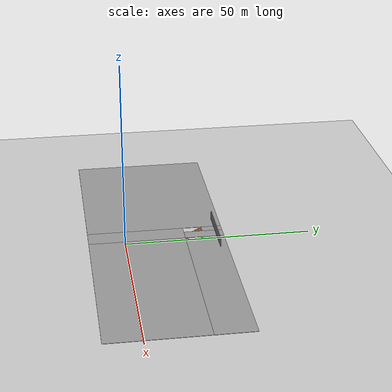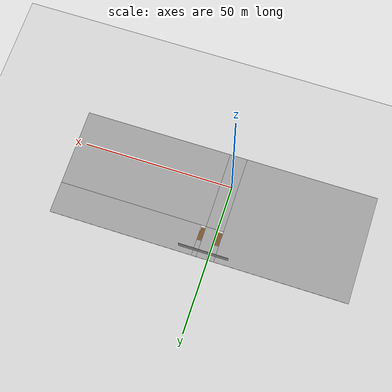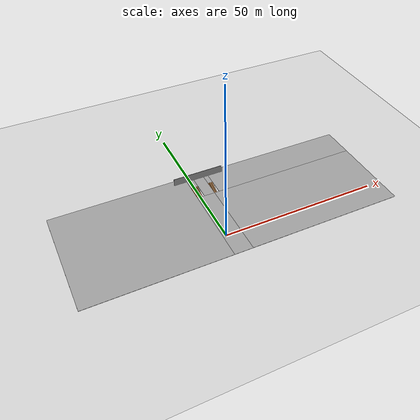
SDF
<sdf version="1.6">
 <world name="default">
  <model name="ground_plane">
   <static>1</static>
   <link name="link">
    <collision name="collision">
     <geometry><plane><normal>0 0 1</normal><size>100 100</size></plane></geometry>
     <surface>
      <contact><collide_bitmask>65535</collide_bitmask></contact>
      <friction><ode><mu>100</mu><mu2>50</mu2></ode></friction>
     </surface>
    </collision>
    <visual name="visual">
     <cast_shadows>0</cast_shadows>
     <geometry><plane><normal>0 0 1</normal><size>100 100</size></plane></geometry>
     <material>
      <script><uri>file://media/materials/scripts/gazebo.material</uri><name>Gazebo/Grey</name></script>
     </material>
    </visual>
   </link>
  </model>
  <model name="bush_refined_2floors">
   <pose>3.42472 8.10808 0 0 -0 0</pose>
   <link name="Floor_11">
    <pose>-1e-06 0 2.5 0 -0 0</pose>
    <visual name="Floor_11_Visual_0">
     <pose>-27.314 0 0.05 0 -0 0</pose>
     <geometry><box><size>43.531 35.9907 0.1</size></box></geometry>
     <material>
      <script><uri>file://media/materials/scripts/gazebo.material</uri><name>Gazebo/Grey</name></script>
      <ambient>1 1 1 1</ambient>
     </material>
     <meta><layer>1</layer></meta>
    </visual>
    <collision name="Floor_11_Collision_0">
     <geometry><box><size>43.531 35.9907 0.1</size></box></geometry>
     <pose>-27.314 0 0.05 0 -0 0</pose>
    </collision>
    <visual name="Floor_11_Visual_1">
     <pose>-2.67166 -5.16521 0.05 0 -0 0</pose>
     <geometry><box><size>5.75376 25.6603 0.1</size></box></geometry>
     <material>
      <script><uri>file://media/materials/scripts/gazebo.material</uri><name>Gazebo/Grey</name></script>
      <ambient>1 1 1 1</ambient>
     </material>
     <meta><layer>1</layer></meta>
    </visual>
    <collision name="Floor_11_Collision_1">
     <geometry><box><size>5.75376 25.6603 0.1</size></box></geometry>
     <pose>-2.67166 -5.16521 0.05 0 -0 0</pose>
    </collision>
    <visual name="Floor_11_Visual_2">
     <pose>24.6424 -5.18757 0.05 0 -0 0</pose>
     <geometry><box><size>48.8743 25.6156 0.1</size></box></geometry>
     <material>
      <script><uri>file://media/materials/scripts/gazebo.material</uri><name>Gazebo/Grey</name></script>
      <ambient>1 1 1 1</ambient>
     </material>
     <meta><layer>1</layer></meta>
    </visual>
    <collision name="Floor_11_Collision_2">
     <geometry><box><size>48.8743 25.6156 0.1</size></box></geometry>
     <pose>24.6424 -5.18757 0.05 0 -0 0</pose>
    </collision>
    <visual name="Floor_11_Visual_3">
     <pose>25.4174 12.8078 0.05 0 -0 0</pose>
     <geometry><box><size>47.3243 10.3751 0.1</size></box></geometry>
     <material>
      <script><uri>file://media/materials/scripts/gazebo.material</uri><name>Gazebo/Grey</name></script>
      <ambient>1 1 1 1</ambient>
     </material>
     <meta><layer>1</layer></meta>
    </visual>
    <collision name="Floor_11_Collision_3">
     <geometry><box><size>47.3243 10.3751 0.1</size></box></geometry>
     <pose>25.4174 12.8078 0.05 0 -0 0</pose>
    </collision>
    <visual name="Floor_11_Visual_4">
     <pose>-1.48885 12.8301 0.05 0 -0 0</pose>
     <geometry><box><size>3.38815 10.3304 0.1</size></box></geometry>
     <material>
      <script><uri>file://media/materials/scripts/gazebo.material</uri><name>Gazebo/Grey</name></script>
      <ambient>1 1 1 1</ambient>
     </material>
     <meta><layer>1</layer></meta>
    </visual>
    <collision name="Floor_11_Collision_4">
     <geometry><box><size>3.38815 10.3304 0.1</size></box></geometry>
     <pose>-1.48885 12.8301 0.05 0 -0 0</pose>
    </collision>
    <visual name="Floor_11_Visual_5">
     <pose>0.980227 15.277 0.05 0 -0 0</pose>
     <geometry><box><size>1.55 5.43661 0.1</size></box></geometry>
     <material>
      <script><uri>file://media/materials/scripts/gazebo.material</uri><name>Gazebo/Grey</name></script>
      <ambient>1 1 1 1</ambient>
     </material>
     <meta><layer>1</layer></meta>
    </visual>
    <collision name="Floor_11_Collision_5">
     <geometry><box><size>1.55 5.43661 0.1</size></box></geometry>
     <pose>0.980227 15.277 0.05 0 -0 0</pose>
    </collision>
    <visual name="Floor_11_Visual_6">
     <pose>-4.36573 15.3096 0.05 0 -0 0</pose>
     <geometry><box><size>2.36561 5.37156 0.1</size></box></geometry>
     <material>
      <script><uri>file://media/materials/scripts/gazebo.material</uri><name>Gazebo/Grey</name></script>
      <ambient>1 1 1 1</ambient>
     </material>
     <meta><layer>1</layer></meta>
    </visual>
    <collision name="Floor_11_Collision_6">
     <geometry><box><size>2.36561 5.37156 0.1</size></box></geometry>
     <pose>-4.36573 15.3096 0.05 0 -0 0</pose>
    </collision>
   </link>
   <link name="Stairs_0">
    <visual name="Stairs_0_Visual_0">
     <pose>-4.36573 7.83023 0.083333 0 -0 -3.14159</pose>
     <geometry><box><size>2.36561 0.330591 0.166667</size></box></geometry>
     <material>
      <script><uri>file://media/materials/scripts/gazebo.material</uri><name>Gazebo/Wood</name></script>
      <ambient>0.921569 0.807843 0.615686 1</ambient>
     </material>
     <meta><layer>0</layer></meta>
    </visual>
    <collision name="Stairs_0_Collision_0">
     <geometry><box><size>2.36561 0.330591 0.166667</size></box></geometry>
     <pose>-4.36573 7.83023 0.083333 0 -0 -3.14159</pose>
    </collision>
    <visual name="Stairs_0_Visual_1">
     <pose>-4.36573 8.16082 0.25 0 -0 -3.14159</pose>
     <geometry><box><size>2.36561 0.330591 0.166667</size></box></geometry>
     <material>
      <script><uri>file://media/materials/scripts/gazebo.material</uri><name>Gazebo/Wood</name></script>
      <ambient>0.921569 0.807843 0.615686 1</ambient>
     </material>
     <meta><layer>0</layer></meta>
    </visual>
    <collision name="Stairs_0_Collision_1">
     <geometry><box><size>2.36561 0.330591 0.166667</size></box></geometry>
     <pose>-4.36573 8.16082 0.25 0 -0 -3.14159</pose>
    </collision>
    <visual name="Stairs_0_Visual_2">
     <pose>-4.36573 8.49141 0.416667 0 -0 -3.14159</pose>
     <geometry><box><size>2.36561 0.330591 0.166667</size></box></geometry>
     <material>
      <script><uri>file://media/materials/scripts/gazebo.material</uri><name>Gazebo/Wood</name></script>
      <ambient>0.921569 0.807843 0.615686 1</ambient>
     </material>
     <meta><layer>0</layer></meta>
    </visual>
    <collision name="Stairs_0_Collision_2">
     <geometry><box><size>2.36561 0.330591 0.166667</size></box></geometry>
     <pose>-4.36573 8.49141 0.416667 0 -0 -3.14159</pose>
    </collision>
    <visual name="Stairs_0_Visual_3">
     <pose>-4.36573 8.822 0.583333 0 -0 -3.14159</pose>
     <geometry><box><size>2.36561 0.330591 0.166667</size></box></geometry>
     <material>
      <script><uri>file://media/materials/scripts/gazebo.material</uri><name>Gazebo/Wood</name></script>
      <ambient>0.921569 0.807843 0.615686 1</ambient>
     </material>
     <meta><layer>0</layer></meta>
    </visual>
    <collision name="Stairs_0_Collision_3">
     <geometry><box><size>2.36561 0.330591 0.166667</size></box></geometry>
     <pose>-4.36573 8.822 0.583333 0 -0 -3.14159</pose>
    </collision>
    <visual name="Stairs_0_Visual_4">
     <pose>-4.36573 9.15259 0.75 0 -0 -3.14159</pose>
     <geometry><box><size>2.36561 0.330591 0.166667</size></box></geometry>
     <material>
      <script><uri>file://media/materials/scripts/gazebo.material</uri><name>Gazebo/Wood</name></script>
      <ambient>0.921569 0.807843 0.615686 1</ambient>
     </material>
     <meta><layer>0</layer></meta>
    </visual>
    <collision name="Stairs_0_Collision_4">
     <geometry><box><size>2.36561 0.330591 0.166667</size></box></geometry>
     <pose>-4.36573 9.15259 0.75 0 -0 -3.14159</pose>
    </collision>
    <visual name="Stairs_0_Visual_5">
     <pose>-4.36573 9.48318 0.916667 0 -0 -3.14159</pose>
     <geometry><box><size>2.36561 0.330591 0.166667</size></box></geometry>
     <material>
      <script><uri>file://media/materials/scripts/gazebo.material</uri><name>Gazebo/Wood</name></script>
      <ambient>0.921569 0.807843 0.615686 1</ambient>
     </material>
     <meta><layer>0</layer></meta>
    </visual>
    <collision name="Stairs_0_Collision_5">
     <geometry><box><size>2.36561 0.330591 0.166667</size></box></geometry>
     <pose>-4.36573 9.48318 0.916667 0 -0 -3.14159</pose>
    </collision>
    <visual name="Stairs_0_Visual_6">
     <pose>-4.36573 9.81377 1.08333 0 -0 -3.14159</pose>
     <geometry><box><size>2.36561 0.330591 0.166667</size></box></geometry>
     <material>
      <script><uri>file://media/materials/scripts/gazebo.material</uri><name>Gazebo/Wood</name></script>
      <ambient>0.921569 0.807843 0.615686 1</ambient>
     </material>
     <meta><layer>0</layer></meta>
    </visual>
    <collision name="Stairs_0_Collision_6">
     <geometry><box><size>2.36561 0.330591 0.166667</size></box></geometry>
     <pose>-4.36573 9.81377 1.08333 0 -0 -3.14159</pose>
    </collision>
    <visual name="Stairs_0_Visual_7">
     <pose>-4.36573 10.1444 1.25 0 -0 -3.14159</pose>
     <geometry><box><size>2.36561 0.330591 0.166667</size></box></geometry>
     <material>
      <script><uri>file://media/materials/scripts/gazebo.material</uri><name>Gazebo/Wood</name></script>
      <ambient>0.921569 0.807843 0.615686 1</ambient>
     </material>
     <meta><layer>0</layer></meta>
    </visual>
    <collision name="Stairs_0_Collision_7">
     <geometry><box><size>2.36561 0.330591 0.166667</size></box></geometry>
     <pose>-4.36573 10.1444 1.25 0 -0 -3.14159</pose>
    </collision>
    <visual name="Stairs_0_Visual_8">
     <pose>-4.36573 10.475 1.41667 0 -0 -3.14159</pose>
     <geometry><box><size>2.36561 0.330591 0.166667</size></box></geometry>
     <material>
      <script><uri>file://media/materials/scripts/gazebo.material</uri><name>Gazebo/Wood</name></script>
      <ambient>0.921569 0.807843 0.615686 1</ambient>
     </material>
     <meta><layer>0</layer></meta>
    </visual>
    <collision name="Stairs_0_Collision_8">
     <geometry><box><size>2.36561 0.330591 0.166667</size></box></geometry>
     <pose>-4.36573 10.475 1.41667 0 -0 -3.14159</pose>
    </collision>
    <visual name="Stairs_0_Visual_9">
     <pose>-4.36573 10.8055 1.58333 0 -0 -3.14159</pose>
     <geometry><box><size>2.36561 0.330591 0.166667</size></box></geometry>
     <material>
      <script><uri>file://media/materials/scripts/gazebo.material</uri><name>Gazebo/Wood</name></script>
      <ambient>0.921569 0.807843 0.615686 1</ambient>
     </material>
     <meta><layer>0</layer></meta>
    </visual>
    <collision name="Stairs_0_Collision_9">
     <geometry><box><size>2.36561 0.330591 0.166667</size></box></geometry>
     <pose>-4.36573 10.8055 1.58333 0 -0 -3.14159</pose>
    </collision>
    <visual name="Stairs_0_Visual_10">
     <pose>-4.36573 11.1361 1.75 0 -0 -3.14159</pose>
     <geometry><box><size>2.36561 0.330591 0.166667</size></box></geometry>
     <material>
      <script><uri>file://media/materials/scripts/gazebo.material</uri><name>Gazebo/Wood</name></script>
      <ambient>0.921569 0.807843 0.615686 1</ambient>
     </material>
     <meta><layer>0</layer></meta>
    </visual>
    <collision name="Stairs_0_Collision_10">
     <geometry><box><size>2.36561 0.330591 0.166667</size></box></geometry>
     <pose>-4.36573 11.1361 1.75 0 -0 -3.14159</pose>
    </collision>
    <visual name="Stairs_0_Visual_11">
     <pose>-4.36573 11.4667 1.91667 0 -0 -3.14159</pose>
     <geometry><box><size>2.36561 0.330591 0.166667</size></box></geometry>
     <material>
      <script><uri>file://media/materials/scripts/gazebo.material</uri><name>Gazebo/Wood</name></script>
      <ambient>0.921569 0.807843 0.615686 1</ambient>
     </material>
     <meta><layer>0</layer></meta>
    </visual>
    <collision name="Stairs_0_Collision_11">
     <geometry><box><size>2.36561 0.330591 0.166667</size></box></geometry>
     <pose>-4.36573 11.4667 1.91667 0 -0 -3.14159</pose>
    </collision>
    <visual name="Stairs_0_Visual_12">
     <pose>-4.36573 11.7973 2.08333 0 -0 -3.14159</pose>
     <geometry><box><size>2.36561 0.330591 0.166667</size></box></geometry>
     <material>
      <script><uri>file://media/materials/scripts/gazebo.material</uri><name>Gazebo/Wood</name></script>
      <ambient>0.921569 0.807843 0.615686 1</ambient>
     </material>
     <meta><layer>0</layer></meta>
    </visual>
    <collision name="Stairs_0_Collision_12">
     <geometry><box><size>2.36561 0.330591 0.166667</size></box></geometry>
     <pose>-4.36573 11.7973 2.08333 0 -0 -3.14159</pose>
    </collision>
    <visual name="Stairs_0_Visual_13">
     <pose>-4.36573 12.1279 2.25 0 -0 -3.14159</pose>
     <geometry><box><size>2.36561 0.330591 0.166667</size></box></geometry>
     <material>
      <script><uri>file://media/materials/scripts/gazebo.material</uri><name>Gazebo/Wood</name></script>
      <ambient>0.921569 0.807843 0.615686 1</ambient>
     </material>
     <meta><layer>0</layer></meta>
    </visual>
    <collision name="Stairs_0_Collision_13">
     <geometry><box><size>2.36561 0.330591 0.166667</size></box></geometry>
     <pose>-4.36573 12.1279 2.25 0 -0 -3.14159</pose>
    </collision>
    <visual name="Stairs_0_Visual_14">
     <pose>-4.36573 12.4585 2.41667 0 -0 -3.14159</pose>
     <geometry><box><size>2.36561 0.330591 0.166667</size></box></geometry>
     <material>
      <script><uri>file://media/materials/scripts/gazebo.material</uri><name>Gazebo/Wood</name></script>
      <ambient>0.921569 0.807843 0.615686 1</ambient>
     </material>
     <meta><layer>0</layer></meta>
    </visual>
    <collision name="Stairs_0_Collision_14">
     <geometry><box><size>2.36561 0.330591 0.166667</size></box></geometry>
     <pose>-4.36573 12.4585 2.41667 0 -0 -3.14159</pose>
    </collision>
   </link>
   <link name="Stairs_1">
    <visual name="Stairs_1_Visual_0">
     <pose>0.980225 7.78482 0.083333 0 -0 -3.14159</pose>
     <geometry><box><size>1.55 0.329236 0.166667</size></box></geometry>
     <material>
      <script><uri>file://media/materials/scripts/gazebo.material</uri><name>Gazebo/Wood</name></script>
      <ambient>0.921569 0.807843 0.615686 1</ambient>
     </material>
     <meta><layer>0</layer></meta>
    </visual>
    <collision name="Stairs_1_Collision_0">
     <geometry><box><size>1.55 0.329236 0.166667</size></box></geometry>
     <pose>0.980225 7.78482 0.083333 0 -0 -3.14159</pose>
    </collision>
    <visual name="Stairs_1_Visual_1">
     <pose>0.980225 8.11406 0.25 0 -0 -3.14159</pose>
     <geometry><box><size>1.55 0.329236 0.166667</size></box></geometry>
     <material>
      <script><uri>file://media/materials/scripts/gazebo.material</uri><name>Gazebo/Wood</name></script>
      <ambient>0.921569 0.807843 0.615686 1</ambient>
     </material>
     <meta><layer>0</layer></meta>
    </visual>
    <collision name="Stairs_1_Collision_1">
     <geometry><box><size>1.55 0.329236 0.166667</size></box></geometry>
     <pose>0.980225 8.11406 0.25 0 -0 -3.14159</pose>
    </collision>
    <visual name="Stairs_1_Visual_2">
     <pose>0.980225 8.4433 0.416667 0 -0 -3.14159</pose>
     <geometry><box><size>1.55 0.329236 0.166667</size></box></geometry>
     <material>
      <script><uri>file://media/materials/scripts/gazebo.material</uri><name>Gazebo/Wood</name></script>
      <ambient>0.921569 0.807843 0.615686 1</ambient>
     </material>
     <meta><layer>0</layer></meta>
    </visual>
    <collision name="Stairs_1_Collision_2">
     <geometry><box><size>1.55 0.329236 0.166667</size></box></geometry>
     <pose>0.980225 8.4433 0.416667 0 -0 -3.14159</pose>
    </collision>
    <visual name="Stairs_1_Visual_3">
     <pose>0.980225 8.77253 0.583333 0 -0 -3.14159</pose>
     <geometry><box><size>1.55 0.329236 0.166667</size></box></geometry>
     <material>
      <script><uri>file://media/materials/scripts/gazebo.material</uri><name>Gazebo/Wood</name></script>
      <ambient>0.921569 0.807843 0.615686 1</ambient>
     </material>
     <meta><layer>0</layer></meta>
    </visual>
    <collision name="Stairs_1_Collision_3">
     <geometry><box><size>1.55 0.329236 0.166667</size></box></geometry>
     <pose>0.980225 8.77253 0.583333 0 -0 -3.14159</pose>
    </collision>
    <visual name="Stairs_1_Visual_4">
     <pose>0.980225 9.10177 0.75 0 -0 -3.14159</pose>
     <geometry><box><size>1.55 0.329236 0.166667</size></box></geometry>
     <material>
      <script><uri>file://media/materials/scripts/gazebo.material</uri><name>Gazebo/Wood</name></script>
      <ambient>0.921569 0.807843 0.615686 1</ambient>
     </material>
     <meta><layer>0</layer></meta>
    </visual>
    <collision name="Stairs_1_Collision_4">
     <geometry><box><size>1.55 0.329236 0.166667</size></box></geometry>
     <pose>0.980225 9.10177 0.75 0 -0 -3.14159</pose>
    </collision>
    <visual name="Stairs_1_Visual_5">
     <pose>0.980225 9.431 0.916667 0 -0 -3.14159</pose>
     <geometry><box><size>1.55 0.329236 0.166667</size></box></geometry>
     <material>
      <script><uri>file://media/materials/scripts/gazebo.material</uri><name>Gazebo/Wood</name></script>
      <ambient>0.921569 0.807843 0.615686 1</ambient>
     </material>
     <meta><layer>0</layer></meta>
    </visual>
    <collision name="Stairs_1_Collision_5">
     <geometry><box><size>1.55 0.329236 0.166667</size></box></geometry>
     <pose>0.980225 9.431 0.916667 0 -0 -3.14159</pose>
    </collision>
    <visual name="Stairs_1_Visual_6">
     <pose>0.980225 9.76024 1.08333 0 -0 -3.14159</pose>
     <geometry><box><size>1.55 0.329236 0.166667</size></box></geometry>
     <material>
      <script><uri>file://media/materials/scripts/gazebo.material</uri><name>Gazebo/Wood</name></script>
      <ambient>0.921569 0.807843 0.615686 1</ambient>
     </material>
     <meta><layer>0</layer></meta>
    </visual>
    <collision name="Stairs_1_Collision_6">
     <geometry><box><size>1.55 0.329236 0.166667</size></box></geometry>
     <pose>0.980225 9.76024 1.08333 0 -0 -3.14159</pose>
    </collision>
    <visual name="Stairs_1_Visual_7">
     <pose>0.980225 10.0895 1.25 0 -0 -3.14159</pose>
     <geometry><box><size>1.55 0.329236 0.166667</size></box></geometry>
     <material>
      <script><uri>file://media/materials/scripts/gazebo.material</uri><name>Gazebo/Wood</name></script>
      <ambient>0.921569 0.807843 0.615686 1</ambient>
     </material>
     <meta><layer>0</layer></meta>
    </visual>
    <collision name="Stairs_1_Collision_7">
     <geometry><box><size>1.55 0.329236 0.166667</size></box></geometry>
     <pose>0.980225 10.0895 1.25 0 -0 -3.14159</pose>
    </collision>
    <visual name="Stairs_1_Visual_8">
     <pose>0.980225 10.4187 1.41667 0 -0 -3.14159</pose>
     <geometry><box><size>1.55 0.329236 0.166667</size></box></geometry>
     <material>
      <script><uri>file://media/materials/scripts/gazebo.material</uri><name>Gazebo/Wood</name></script>
      <ambient>0.921569 0.807843 0.615686 1</ambient>
     </material>
     <meta><layer>0</layer></meta>
    </visual>
    <collision name="Stairs_1_Collision_8">
     <geometry><box><size>1.55 0.329236 0.166667</size></box></geometry>
     <pose>0.980225 10.4187 1.41667 0 -0 -3.14159</pose>
    </collision>
    <visual name="Stairs_1_Visual_9">
     <pose>0.980225 10.7479 1.58333 0 -0 -3.14159</pose>
     <geometry><box><size>1.55 0.329236 0.166667</size></box></geometry>
     <material>
      <script><uri>file://media/materials/scripts/gazebo.material</uri><name>Gazebo/Wood</name></script>
      <ambient>0.921569 0.807843 0.615686 1</ambient>
     </material>
     <meta><layer>0</layer></meta>
    </visual>
    <collision name="Stairs_1_Collision_9">
     <geometry><box><size>1.55 0.329236 0.166667</size></box></geometry>
     <pose>0.980225 10.7479 1.58333 0 -0 -3.14159</pose>
    </collision>
    <visual name="Stairs_1_Visual_10">
     <pose>0.980225 11.0772 1.75 0 -0 -3.14159</pose>
     <geometry><box><size>1.55 0.329236 0.166667</size></box></geometry>
     <material>
      <script><uri>file://media/materials/scripts/gazebo.material</uri><name>Gazebo/Wood</name></script>
      <ambient>0.921569 0.807843 0.615686 1</ambient>
     </material>
     <meta><layer>0</layer></meta>
    </visual>
    <collision name="Stairs_1_Collision_10">
     <geometry><box><size>1.55 0.329236 0.166667</size></box></geometry>
     <pose>0.980225 11.0772 1.75 0 -0 -3.14159</pose>
    </collision>
    <visual name="Stairs_1_Visual_11">
     <pose>0.980225 11.4064 1.91667 0 -0 -3.14159</pose>
     <geometry><box><size>1.55 0.329236 0.166667</size></box></geometry>
     <material>
      <script><uri>file://media/materials/scripts/gazebo.material</uri><name>Gazebo/Wood</name></script>
      <ambient>0.921569 0.807843 0.615686 1</ambient>
     </material>
     <meta><layer>0</layer></meta>
    </visual>
    <collision name="Stairs_1_Collision_11">
     <geometry><box><size>1.55 0.329236 0.166667</size></box></geometry>
     <pose>0.980225 11.4064 1.91667 0 -0 -3.14159</pose>
    </collision>
    <visual name="Stairs_1_Visual_12">
     <pose>0.980225 11.7357 2.08333 0 -0 -3.14159</pose>
     <geometry><box><size>1.55 0.329236 0.166667</size></box></geometry>
     <material>
      <script><uri>file://media/materials/scripts/gazebo.material</uri><name>Gazebo/Wood</name></script>
      <ambient>0.921569 0.807843 0.615686 1</ambient>
     </material>
     <meta><layer>0</layer></meta>
    </visual>
    <collision name="Stairs_1_Collision_12">
     <geometry><box><size>1.55 0.329236 0.166667</size></box></geometry>
     <pose>0.980225 11.7357 2.08333 0 -0 -3.14159</pose>
    </collision>
    <visual name="Stairs_1_Visual_13">
     <pose>0.980225 12.0649 2.25 0 -0 -3.14159</pose>
     <geometry><box><size>1.55 0.329236 0.166667</size></box></geometry>
     <material>
      <script><uri>file://media/materials/scripts/gazebo.material</uri><name>Gazebo/Wood</name></script>
      <ambient>0.921569 0.807843 0.615686 1</ambient>
     </material>
     <meta><layer>0</layer></meta>
    </visual>
    <collision name="Stairs_1_Collision_13">
     <geometry><box><size>1.55 0.329236 0.166667</size></box></geometry>
     <pose>0.980225 12.0649 2.25 0 -0 -3.14159</pose>
    </collision>
    <visual name="Stairs_1_Visual_14">
     <pose>0.980225 12.3941 2.41667 0 -0 -3.14159</pose>
     <geometry><box><size>1.55 0.329236 0.166667</size></box></geometry>
     <material>
      <script><uri>file://media/materials/scripts/gazebo.material</uri><name>Gazebo/Wood</name></script>
      <ambient>0.921569 0.807843 0.615686 1</ambient>
     </material>
     <meta><layer>0</layer></meta>
    </visual>
    <collision name="Stairs_1_Collision_14">
     <geometry><box><size>1.55 0.329236 0.166667</size></box></geometry>
     <pose>0.980225 12.3941 2.41667 0 -0 -3.14159</pose>
    </collision>
   </link>
   <link name="Wall_3">
    <collision name="Wall_3_Collision">
     <geometry><box><size>16.25 0.15 2.5</size></box></geometry>
     <pose>0 0 1.25 0 -0 0</pose>
    </collision>
    <visual name="Wall_3_Visual">
     <pose>0 0 1.25 0 -0 0</pose>
     <geometry><box><size>16.25 0.15 2.5</size></box></geometry>
     <material>
      <script><uri>file://media/materials/scripts/gazebo.material</uri><name>Gazebo/Grey</name></script>
      <ambient>1 1 1 1</ambient>
     </material>
     <meta><layer>0</layer></meta>
    </visual>
    <pose>-1.59352 16.1073 0 0 -0 0</pose>
   </link>
   <link name="Wall_950">
    <collision name="Wall_950_Collision">
     <geometry><box><size>16.25 0.15 2.5</size></box></geometry>
     <pose>0 0 1.25 0 -0 0</pose>
    </collision>
    <visual name="Wall_950_Visual">
     <pose>0 0 1.25 0 -0 0</pose>
     <geometry><box><size>16.25 0.15 2.5</size></box></geometry>
     <material>
      <script><uri>file://media/materials/scripts/gazebo.material</uri><name>Gazebo/Grey</name></script>
      <ambient>1 1 1 1</ambient>
     </material>
     <meta><layer>1</layer></meta>
    </visual>
    <pose>-1.59352 16.1073 2.5 0 -0 0</pose>
   </link>
   <static>1</static>
  </model>
 </world>
</sdf>
